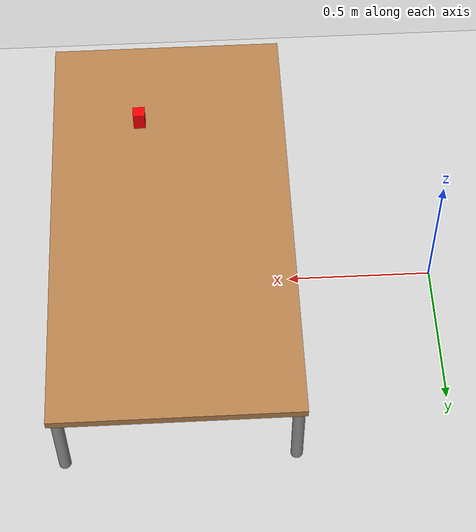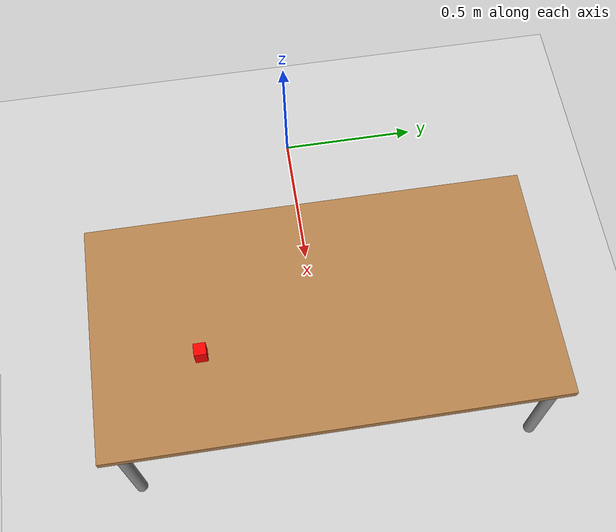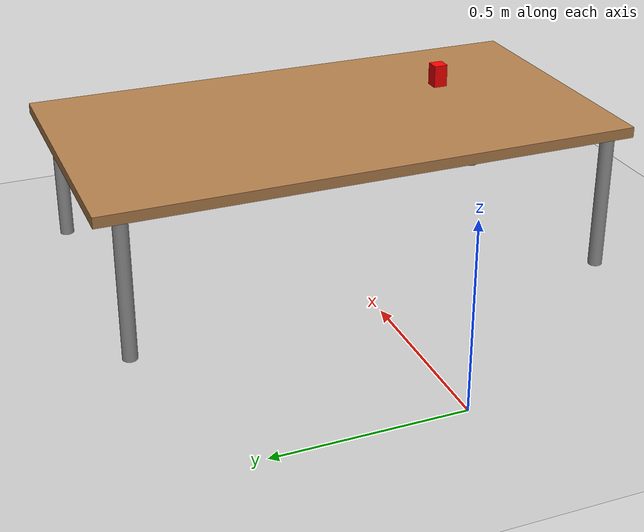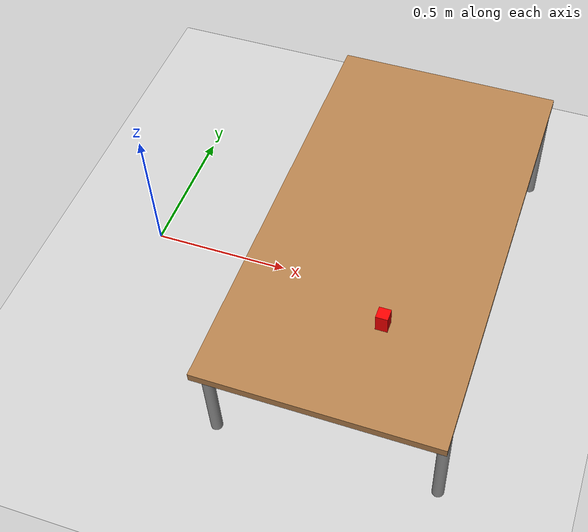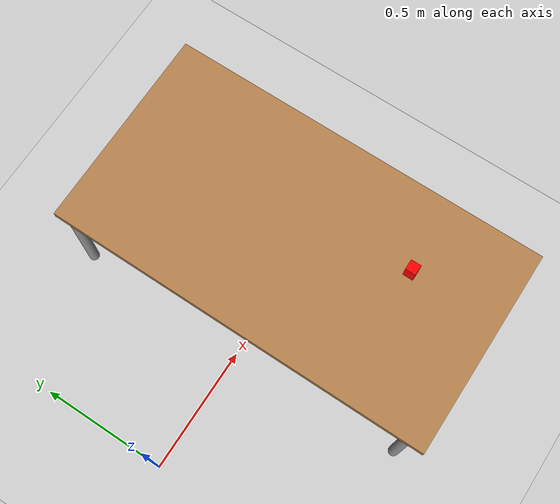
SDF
<sdf version="1.5">
 <world name="default">
  <physics type="ode">
   <max_step_size>0.001</max_step_size>
   <real_time_factor>1</real_time_factor>
   <real_time_update_rate>0</real_time_update_rate>
  </physics>
  <include><uri>model://ground_plane</uri></include>
  <include><uri>model://sun</uri></include>
  <model name="low_table"><pose>0.9 0 0 0 0 1.57</pose><include><uri>model://low_table</uri></include></model>
  <model name="beer">
   <pose>1.0 -0.4 0.43 0 0 0</pose>
   <link name="link">
    <collision name="box_collision">
     <geometry><box><size>0.04 0.04 0.1</size></box></geometry>
     <surface><friction><ode><mu>1.0</mu><mu2>1.0</mu2></ode></friction></surface>
    </collision>
    <inertial><mass>0.15</mass></inertial>
    <visual name="visual">
     <material>
      <ambient>0.5 0 0 1.0</ambient>
      <diffuse>1.0 0 0 1.0</diffuse>
      <specular>1.0 1.0 1.0 1.0</specular>
     </material>
     <geometry><box><size>0.04 0.04 0.1</size></box></geometry>
    </visual>
   </link>
  </model>
 </world>
</sdf>

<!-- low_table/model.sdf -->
<sdf version="1.5">
  <model name="low_table">
    <static>true</static>
    <link name="link">
      <collision name="surface">
        <pose>0 0 0.4 0 0 0</pose>
        <geometry>
          <box>
            <size>1.5 0.8 0.03</size>
          </box>
        </geometry>
        <surface>
          <friction>
            <ode>
              <mu>0.6</mu>
              <mu2>0.6</mu2>
            </ode>
          </friction>
        </surface>
      </collision>
      <visual name="visual1">
        <pose>0 0 0.4 0 0 0</pose>
        <geometry>
          <box>
            <size>1.5 0.8 0.03</size>
          </box>
        </geometry>
        <material>
          <script>
            <uri>file://media/materials/scripts/gazebo.material</uri>
            <name>Gazebo/Wood</name>
          </script>
        </material>
      </visual>
      <collision name="front_left_leg">
        <pose>0.68 0.38 0.2 0 0 0</pose>
        <geometry>
          <cylinder>
            <radius>0.02</radius>
            <length>0.4</length>
          </cylinder>
        </geometry>
      </collision>
      <visual name="front_left_leg">
        <pose>0.68 0.38 0.2 0 0 0</pose>
        <geometry>
          <cylinder>
            <radius>0.02</radius>
            <length>0.4</length>
          </cylinder>
        </geometry>
        <material>
          <script>
            <uri>file://media/materials/scripts/gazebo.material</uri>
            <name>Gazebo/Grey</name>
          </script>
        </material>
      </visual>
      <collision name="front_right_leg">
        <pose>0.68 -0.38 0.2 0 0 0</pose>
        <geometry>
          <cylinder>
            <radius>0.02</radius>
            <length>0.4</length>
          </cylinder>
        </geometry>
      </collision>
      <visual name="front_right_leg">
        <pose>0.68 -0.38 0.2 0 0 0</pose>
        <geometry>
          <cylinder>
            <radius>0.02</radius>
            <length>0.4</length>
          </cylinder>
        </geometry>
        <material>
          <script>
            <uri>file://media/materials/scripts/gazebo.material</uri>
            <name>Gazebo/Grey</name>
          </script>
        </material>
      </visual>
      <collision name="back_right_leg">
        <pose>-0.68 -0.38 0.2 0 0 0</pose>
        <geometry>
          <cylinder>
            <radius>0.02</radius>
            <length>0.4</length>
          </cylinder>
        </geometry>
      </collision>
      <visual name="back_right_leg">
        <pose>-0.68 -0.38 0.2 0 0 0</pose>
        <geometry>
          <cylinder>
            <radius>0.02</radius>
            <length>0.4</length>
          </cylinder>
        </geometry>
        <material>
          <script>
            <uri>file://media/materials/scripts/gazebo.material</uri>
            <name>Gazebo/Grey</name>
          </script>
        </material>
      </visual>
      <collision name="back_left_leg">
        <pose>-0.68 0.38 0.2 0 0 0</pose>
        <geometry>
          <cylinder>
            <radius>0.02</radius>
            <length>0.4</length>
          </cylinder>
        </geometry>
      </collision>
      <visual name="back_left_leg">
        <pose>-0.68 0.38 0.2 0 0 0</pose>
        <geometry>
          <cylinder>
            <radius>0.02</radius>
            <length>0.4</length>
          </cylinder>
        </geometry>
        <material>
          <script>
            <uri>file://media/materials/scripts/gazebo.material</uri>
            <name>Gazebo/Grey</name>
          </script>
        </material>
      </visual>
    </link>
  </model>
</sdf>
